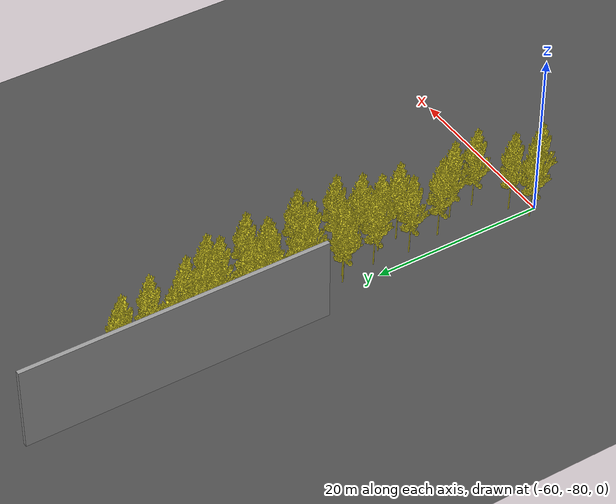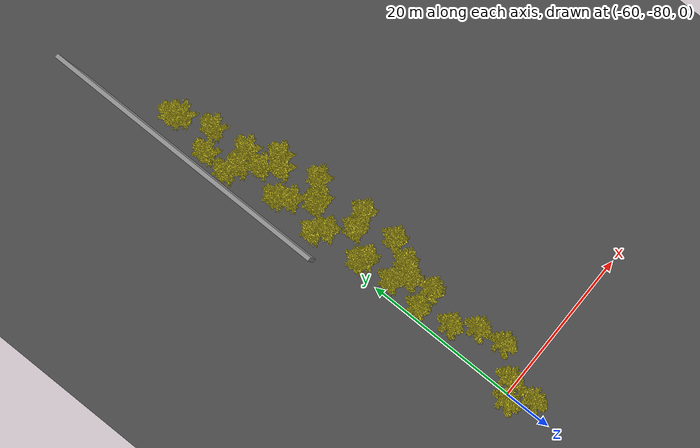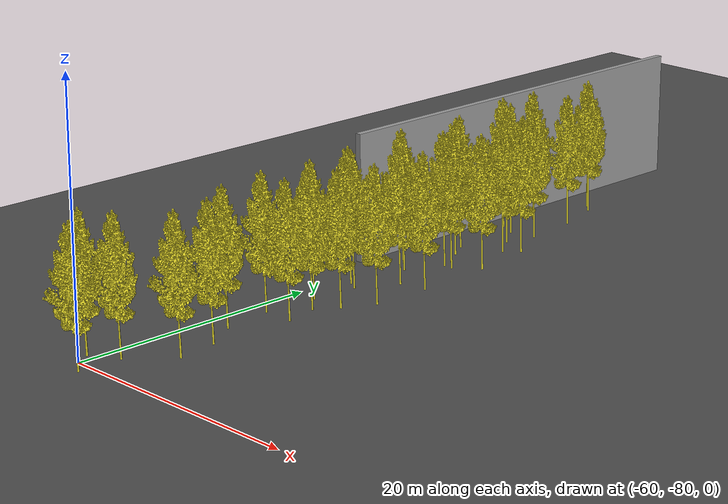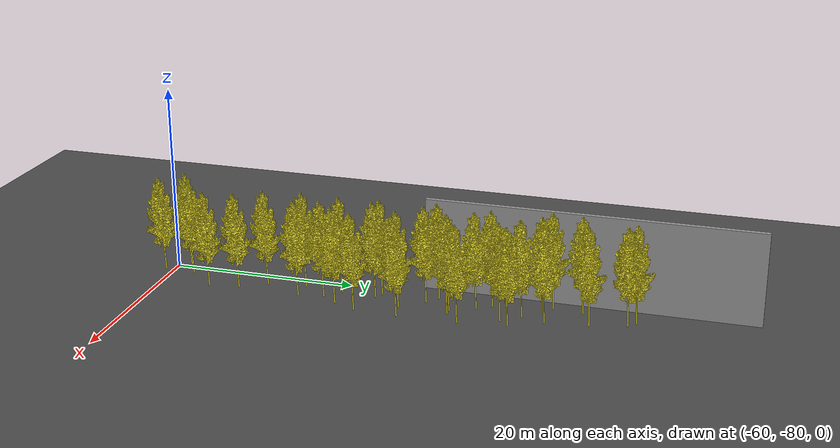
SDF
<sdf version="1.6">
 <world name="default">
  <model name="ground_plane">
   <static>1</static>
   <link name="link">
    <collision name="collision">
     <geometry><plane><normal>0 0 1</normal><size>40000 40000</size></plane></geometry>
     <surface>
      <contact><collide_bitmask>65535</collide_bitmask></contact>
      <friction><ode><mu>100</mu><mu2>50</mu2></ode></friction>
     </surface>
    </collision>
    <visual name="visual">
     <cast_shadows>0</cast_shadows>
     <geometry><plane><normal>0 0 1</normal><size>130 180</size></plane></geometry>
     <material>
      <script><uri>file://media/materials/scripts/gazebo.material</uri><name>Gazebo/Road</name></script>
     </material>
    </visual>
   </link>
  </model>
  <model name="wall1_clone_clone_0_clone_1">
   <link name="link">
    <enable_wind>1</enable_wind>
    <inertial>
     <mass>1</mass>
     <inertia><ixx>1</ixx><ixy>0</ixy><ixz>0</ixz><iyy>1</iyy><iyz>0</iyz><izz>1</izz></inertia>
    </inertial>
    <visual name="visual">
     <cast_shadows>0</cast_shadows>
     <geometry><box><size>35 0.5 10</size></box></geometry>
     <material>
      <script>
       <uri>model://grey_wall/materials/scripts</uri>
       <uri>model://grey_wall/materials/textures</uri>
       <name>vrc/grey_wall</name>
      </script>
      <shader type="pixel"><normal_map>__default__</normal_map></shader>
      <ambient>1 1 1 1</ambient>
      <diffuse>1 1 1 1</diffuse>
      <specular>0 0 0 1</specular>
      <emissive>0 0 0 1</emissive>
     </material>
    </visual>
    <collision name="collision">
     <geometry><box><size>35 0.5 10</size></box></geometry>
     <surface>
      <friction>
       <ode><mu>1</mu><mu2>1</mu2><fdir1>0 0 0</fdir1><slip1>0</slip1><slip2>0</slip2></ode>
       <torsional>
        <coefficient>1</coefficient>
        <patch_radius>0</patch_radius>
        <surface_radius>0</surface_radius>
        <use_patch_radius>1</use_patch_radius>
        <ode><slip>0</slip></ode>
       </torsional>
      </friction>
      <bounce><restitution_coefficient>0</restitution_coefficient><threshold>1e+06</threshold></bounce>
      <contact>
       <collide_without_contact>0</collide_without_contact>
       <collide_without_contact_bitmask>1</collide_without_contact_bitmask>
       <collide_bitmask>1</collide_bitmask>
       <ode>
        <soft_cfm>0</soft_cfm>
        <soft_erp>0.2</soft_erp>
        <kp>1e+13</kp>
        <kd>1</kd>
        <max_vel>0.01</max_vel>
        <min_depth>0</min_depth>
       </ode>
       <bullet>
        <split_impulse>1</split_impulse>
        <split_impulse_penetration_threshold>-0.01</split_impulse_penetration_threshold>
        <soft_cfm>0</soft_cfm>
        <soft_erp>0.2</soft_erp>
        <kp>1e+13</kp>
        <kd>1</kd>
       </bullet>
      </contact>
     </surface>
    </collision>
   </link>
   <static>1</static>
   <pose>-62.0288 -34.8437 5 0 0 -1.57191</pose>
  </model>
  <model name="tree0_clone_clone_clone_5">
   <link name="tree_base">
    <inertial>
     <mass>50</mass>
     <inertia>
      <ixx>6.71748</ixx>
      <ixy>2.148e-05</ixy>
      <ixz>-2.4e-07</ixz>
      <iyy>6.71748</iyy>
      <iyz>-0.171807</iyz>
      <izz>6.71748</izz>
     </inertia>
    </inertial>
    <collision name="tree_base_fixed_joint_lump__collision_collision">
     <geometry>
      <mesh>
       <scale>0.4 0.4 0.6</scale>
       <uri>/home/ana/catkin_ws/src/frontier_exploration_3d/models/tree/meshes/tree_25k_mesh.dae</uri>
      </mesh>
     </geometry>
    </collision>
    <visual name="tree_base_visual">
     <geometry>
      <mesh>
       <scale>0.4 0.4 0.6</scale>
       <uri>/home/ana/catkin_ws/src/frontier_exploration_3d/models/tree/meshes/tree_25k_mesh.dae</uri>
      </mesh>
     </geometry>
     <material>
      <script><name>Gazebo/Yellow</name><uri>file://media/materials/scripts/gazebo.material</uri></script>
     </material>
    </visual>
   </link>
   <joint name="joint_tree_base" type="fixed"><child>tree_base</child><parent>world</parent></joint>
   <static>1</static>
   <pose>-59.4162 -46.4754 0 0 -0 0</pose>
  </model>
  <model name="tree0_clone_clone_clone_6">
   <link name="tree_base">
    <inertial>
     <mass>50</mass>
     <inertia>
      <ixx>6.71748</ixx>
      <ixy>2.148e-05</ixy>
      <ixz>-2.4e-07</ixz>
      <iyy>6.71748</iyy>
      <iyz>-0.171807</iyz>
      <izz>6.71748</izz>
     </inertia>
    </inertial>
    <collision name="tree_base_fixed_joint_lump__collision_collision">
     <geometry>
      <mesh>
       <scale>0.4 0.4 0.6</scale>
       <uri>/home/ana/catkin_ws/src/frontier_exploration_3d/models/tree/meshes/tree_25k_mesh.dae</uri>
      </mesh>
     </geometry>
    </collision>
    <visual name="tree_base_visual">
     <geometry>
      <mesh>
       <scale>0.4 0.4 0.6</scale>
       <uri>/home/ana/catkin_ws/src/frontier_exploration_3d/models/tree/meshes/tree_25k_mesh.dae</uri>
      </mesh>
     </geometry>
     <material>
      <script><name>Gazebo/Yellow</name><uri>file://media/materials/scripts/gazebo.material</uri></script>
     </material>
    </visual>
   </link>
   <joint name="joint_tree_base" type="fixed"><child>tree_base</child><parent>world</parent></joint>
   <static>1</static>
   <pose>-59.0154 -40.7074 0 0 -0 0</pose>
  </model>
  <model name="tree0_clone_clone_clone_7">
   <link name="tree_base">
    <inertial>
     <mass>50</mass>
     <inertia>
      <ixx>6.71748</ixx>
      <ixy>2.148e-05</ixy>
      <ixz>-2.4e-07</ixz>
      <iyy>6.71748</iyy>
      <iyz>-0.171807</iyz>
      <izz>6.71748</izz>
     </inertia>
    </inertial>
    <collision name="tree_base_fixed_joint_lump__collision_collision">
     <geometry>
      <mesh>
       <scale>0.4 0.4 0.6</scale>
       <uri>/home/ana/catkin_ws/src/frontier_exploration_3d/models/tree/meshes/tree_25k_mesh.dae</uri>
      </mesh>
     </geometry>
    </collision>
    <visual name="tree_base_visual">
     <geometry>
      <mesh>
       <scale>0.4 0.4 0.6</scale>
       <uri>/home/ana/catkin_ws/src/frontier_exploration_3d/models/tree/meshes/tree_25k_mesh.dae</uri>
      </mesh>
     </geometry>
     <material>
      <script><name>Gazebo/Yellow</name><uri>file://media/materials/scripts/gazebo.material</uri></script>
     </material>
    </visual>
   </link>
   <joint name="joint_tree_base" type="fixed"><child>tree_base</child><parent>world</parent></joint>
   <static>1</static>
   <pose>-58.7263 -35.3485 0 0 -0 0</pose>
  </model>
  <model name="tree0_clone_clone_clone_8">
   <link name="tree_base">
    <inertial>
     <mass>50</mass>
     <inertia>
      <ixx>6.71748</ixx>
      <ixy>2.148e-05</ixy>
      <ixz>-2.4e-07</ixz>
      <iyy>6.71748</iyy>
      <iyz>-0.171807</iyz>
      <izz>6.71748</izz>
     </inertia>
    </inertial>
    <collision name="tree_base_fixed_joint_lump__collision_collision">
     <geometry>
      <mesh>
       <scale>0.4 0.4 0.6</scale>
       <uri>/home/ana/catkin_ws/src/frontier_exploration_3d/models/tree/meshes/tree_25k_mesh.dae</uri>
      </mesh>
     </geometry>
    </collision>
    <visual name="tree_base_visual">
     <geometry>
      <mesh>
       <scale>0.4 0.4 0.6</scale>
       <uri>/home/ana/catkin_ws/src/frontier_exploration_3d/models/tree/meshes/tree_25k_mesh.dae</uri>
      </mesh>
     </geometry>
     <material>
      <script><name>Gazebo/Yellow</name><uri>file://media/materials/scripts/gazebo.material</uri></script>
     </material>
    </visual>
   </link>
   <joint name="joint_tree_base" type="fixed"><child>tree_base</child><parent>world</parent></joint>
   <static>1</static>
   <pose>-56.7958 -44.7371 0 0 -0 0</pose>
  </model>
  <model name="tree0_clone_clone_clone_9">
   <link name="tree_base">
    <inertial>
     <mass>50</mass>
     <inertia>
      <ixx>6.71748</ixx>
      <ixy>2.148e-05</ixy>
      <ixz>-2.4e-07</ixz>
      <iyy>6.71748</iyy>
      <iyz>-0.171807</iyz>
      <izz>6.71748</izz>
     </inertia>
    </inertial>
    <collision name="tree_base_fixed_joint_lump__collision_collision">
     <geometry>
      <mesh>
       <scale>0.4 0.4 0.6</scale>
       <uri>/home/ana/catkin_ws/src/frontier_exploration_3d/models/tree/meshes/tree_25k_mesh.dae</uri>
      </mesh>
     </geometry>
    </collision>
    <visual name="tree_base_visual">
     <geometry>
      <mesh>
       <scale>0.4 0.4 0.6</scale>
       <uri>/home/ana/catkin_ws/src/frontier_exploration_3d/models/tree/meshes/tree_25k_mesh.dae</uri>
      </mesh>
     </geometry>
     <material>
      <script><name>Gazebo/Yellow</name><uri>file://media/materials/scripts/gazebo.material</uri></script>
     </material>
    </visual>
   </link>
   <joint name="joint_tree_base" type="fixed"><child>tree_base</child><parent>world</parent></joint>
   <static>1</static>
   <pose>-58.7918 -52.4923 0 0 -0 0</pose>
  </model>
  <model name="tree0_clone_clone_clone_10">
   <link name="tree_base">
    <inertial>
     <mass>50</mass>
     <inertia>
      <ixx>6.71748</ixx>
      <ixy>2.148e-05</ixy>
      <ixz>-2.4e-07</ixz>
      <iyy>6.71748</iyy>
      <iyz>-0.171807</iyz>
      <izz>6.71748</izz>
     </inertia>
    </inertial>
    <collision name="tree_base_fixed_joint_lump__collision_collision">
     <geometry>
      <mesh>
       <scale>0.4 0.4 0.6</scale>
       <uri>/home/ana/catkin_ws/src/frontier_exploration_3d/models/tree/meshes/tree_25k_mesh.dae</uri>
      </mesh>
     </geometry>
    </collision>
    <visual name="tree_base_visual">
     <geometry>
      <mesh>
       <scale>0.4 0.4 0.6</scale>
       <uri>/home/ana/catkin_ws/src/frontier_exploration_3d/models/tree/meshes/tree_25k_mesh.dae</uri>
      </mesh>
     </geometry>
     <material>
      <script><name>Gazebo/Yellow</name><uri>file://media/materials/scripts/gazebo.material</uri></script>
     </material>
    </visual>
   </link>
   <joint name="joint_tree_base" type="fixed"><child>tree_base</child><parent>world</parent></joint>
   <static>1</static>
   <pose>-56.2185 -49.9586 0 0 -0 0</pose>
  </model>
  <model name="tree0_clone_clone_clone_11">
   <link name="tree_base">
    <inertial>
     <mass>50</mass>
     <inertia>
      <ixx>6.71748</ixx>
      <ixy>2.148e-05</ixy>
      <ixz>-2.4e-07</ixz>
      <iyy>6.71748</iyy>
      <iyz>-0.171807</iyz>
      <izz>6.71748</izz>
     </inertia>
    </inertial>
    <collision name="tree_base_fixed_joint_lump__collision_collision">
     <geometry>
      <mesh>
       <scale>0.4 0.4 0.6</scale>
       <uri>/home/ana/catkin_ws/src/frontier_exploration_3d/models/tree/meshes/tree_25k_mesh.dae</uri>
      </mesh>
     </geometry>
    </collision>
    <visual name="tree_base_visual">
     <geometry>
      <mesh>
       <scale>0.4 0.4 0.6</scale>
       <uri>/home/ana/catkin_ws/src/frontier_exploration_3d/models/tree/meshes/tree_25k_mesh.dae</uri>
      </mesh>
     </geometry>
     <material>
      <script><name>Gazebo/Yellow</name><uri>file://media/materials/scripts/gazebo.material</uri></script>
     </material>
    </visual>
   </link>
   <joint name="joint_tree_base" type="fixed"><child>tree_base</child><parent>world</parent></joint>
   <static>1</static>
   <pose>-54.3122 -43.2584 0 0 -0 0</pose>
  </model>
  <model name="tree0_clone_clone_clone_12">
   <link name="tree_base">
    <inertial>
     <mass>50</mass>
     <inertia>
      <ixx>6.71748</ixx>
      <ixy>2.148e-05</ixy>
      <ixz>-2.4e-07</ixz>
      <iyy>6.71748</iyy>
      <iyz>-0.171807</iyz>
      <izz>6.71748</izz>
     </inertia>
    </inertial>
    <collision name="tree_base_fixed_joint_lump__collision_collision">
     <geometry>
      <mesh>
       <scale>0.4 0.4 0.6</scale>
       <uri>/home/ana/catkin_ws/src/frontier_exploration_3d/models/tree/meshes/tree_25k_mesh.dae</uri>
      </mesh>
     </geometry>
    </collision>
    <visual name="tree_base_visual">
     <geometry>
      <mesh>
       <scale>0.4 0.4 0.6</scale>
       <uri>/home/ana/catkin_ws/src/frontier_exploration_3d/models/tree/meshes/tree_25k_mesh.dae</uri>
      </mesh>
     </geometry>
     <material>
      <script><name>Gazebo/Yellow</name><uri>file://media/materials/scripts/gazebo.material</uri></script>
     </material>
    </visual>
   </link>
   <joint name="joint_tree_base" type="fixed"><child>tree_base</child><parent>world</parent></joint>
   <static>1</static>
   <pose>-56.7407 -34.841 0 0 -0 0</pose>
  </model>
  <model name="tree0_clone_clone_clone_13">
   <link name="tree_base">
    <inertial>
     <mass>50</mass>
     <inertia>
      <ixx>6.71748</ixx>
      <ixy>2.148e-05</ixy>
      <ixz>-2.4e-07</ixz>
      <iyy>6.71748</iyy>
      <iyz>-0.171807</iyz>
      <izz>6.71748</izz>
     </inertia>
    </inertial>
    <collision name="tree_base_fixed_joint_lump__collision_collision">
     <geometry>
      <mesh>
       <scale>0.4 0.4 0.6</scale>
       <uri>/home/ana/catkin_ws/src/frontier_exploration_3d/models/tree/meshes/tree_25k_mesh.dae</uri>
      </mesh>
     </geometry>
    </collision>
    <visual name="tree_base_visual">
     <geometry>
      <mesh>
       <scale>0.4 0.4 0.6</scale>
       <uri>/home/ana/catkin_ws/src/frontier_exploration_3d/models/tree/meshes/tree_25k_mesh.dae</uri>
      </mesh>
     </geometry>
     <material>
      <script><name>Gazebo/Yellow</name><uri>file://media/materials/scripts/gazebo.material</uri></script>
     </material>
    </visual>
   </link>
   <joint name="joint_tree_base" type="fixed"><child>tree_base</child><parent>world</parent></joint>
   <static>1</static>
   <pose>-55.0153 -38.2093 0 0 -0 0</pose>
  </model>
  <model name="tree0_clone_clone_clone_15">
   <link name="tree_base">
    <inertial>
     <mass>50</mass>
     <inertia>
      <ixx>6.71748</ixx>
      <ixy>2.148e-05</ixy>
      <ixz>-2.4e-07</ixz>
      <iyy>6.71748</iyy>
      <iyz>-0.171807</iyz>
      <izz>6.71748</izz>
     </inertia>
    </inertial>
    <collision name="tree_base_fixed_joint_lump__collision_collision">
     <geometry>
      <mesh>
       <scale>0.4 0.4 0.6</scale>
       <uri>/home/ana/catkin_ws/src/frontier_exploration_3d/models/tree/meshes/tree_25k_mesh.dae</uri>
      </mesh>
     </geometry>
    </collision>
    <visual name="tree_base_visual">
     <geometry>
      <mesh>
       <scale>0.4 0.4 0.6</scale>
       <uri>/home/ana/catkin_ws/src/frontier_exploration_3d/models/tree/meshes/tree_25k_mesh.dae</uri>
      </mesh>
     </geometry>
     <material>
      <script><name>Gazebo/Yellow</name><uri>file://media/materials/scripts/gazebo.material</uri></script>
     </material>
    </visual>
   </link>
   <joint name="joint_tree_base" type="fixed"><child>tree_base</child><parent>world</parent></joint>
   <static>1</static>
   <pose>-59.9026 -31.4439 0 0 -0 0</pose>
  </model>
  <model name="tree0_clone_clone_clone_17">
   <link name="tree_base">
    <inertial>
     <mass>50</mass>
     <inertia>
      <ixx>6.71748</ixx>
      <ixy>2.148e-05</ixy>
      <ixz>-2.4e-07</ixz>
      <iyy>6.71748</iyy>
      <iyz>-0.171807</iyz>
      <izz>6.71748</izz>
     </inertia>
    </inertial>
    <collision name="tree_base_fixed_joint_lump__collision_collision">
     <geometry>
      <mesh>
       <scale>0.4 0.4 0.6</scale>
       <uri>/home/ana/catkin_ws/src/frontier_exploration_3d/models/tree/meshes/tree_25k_mesh.dae</uri>
      </mesh>
     </geometry>
    </collision>
    <visual name="tree_base_visual">
     <geometry>
      <mesh>
       <scale>0.4 0.4 0.6</scale>
       <uri>/home/ana/catkin_ws/src/frontier_exploration_3d/models/tree/meshes/tree_25k_mesh.dae</uri>
      </mesh>
     </geometry>
     <material>
      <script><name>Gazebo/Yellow</name><uri>file://media/materials/scripts/gazebo.material</uri></script>
     </material>
    </visual>
   </link>
   <joint name="joint_tree_base" type="fixed"><child>tree_base</child><parent>world</parent></joint>
   <static>1</static>
   <pose>-58.1961 -56.69 0 0 -0 0</pose>
  </model>
  <model name="tree0_clone_clone_clone_18">
   <link name="tree_base">
    <inertial>
     <mass>50</mass>
     <inertia>
      <ixx>6.71748</ixx>
      <ixy>2.148e-05</ixy>
      <ixz>-2.4e-07</ixz>
      <iyy>6.71748</iyy>
      <iyz>-0.171807</iyz>
      <izz>6.71748</izz>
     </inertia>
    </inertial>
    <collision name="tree_base_fixed_joint_lump__collision_collision">
     <geometry>
      <mesh>
       <scale>0.4 0.4 0.6</scale>
       <uri>/home/ana/catkin_ws/src/frontier_exploration_3d/models/tree/meshes/tree_25k_mesh.dae</uri>
      </mesh>
     </geometry>
    </collision>
    <visual name="tree_base_visual">
     <geometry>
      <mesh>
       <scale>0.4 0.4 0.6</scale>
       <uri>/home/ana/catkin_ws/src/frontier_exploration_3d/models/tree/meshes/tree_25k_mesh.dae</uri>
      </mesh>
     </geometry>
     <material>
      <script><name>Gazebo/Yellow</name><uri>file://media/materials/scripts/gazebo.material</uri></script>
     </material>
    </visual>
   </link>
   <joint name="joint_tree_base" type="fixed"><child>tree_base</child><parent>world</parent></joint>
   <static>1</static>
   <pose>-55.4688 -56.6225 0 0 -0 0</pose>
  </model>
  <model name="tree0_clone_clone_clone_19">
   <link name="tree_base">
    <inertial>
     <mass>50</mass>
     <inertia>
      <ixx>6.71748</ixx>
      <ixy>2.148e-05</ixy>
      <ixz>-2.4e-07</ixz>
      <iyy>6.71748</iyy>
      <iyz>-0.171807</iyz>
      <izz>6.71748</izz>
     </inertia>
    </inertial>
    <collision name="tree_base_fixed_joint_lump__collision_collision">
     <geometry>
      <mesh>
       <scale>0.4 0.4 0.6</scale>
       <uri>/home/ana/catkin_ws/src/frontier_exploration_3d/models/tree/meshes/tree_25k_mesh.dae</uri>
      </mesh>
     </geometry>
    </collision>
    <visual name="tree_base_visual">
     <geometry>
      <mesh>
       <scale>0.4 0.4 0.6</scale>
       <uri>/home/ana/catkin_ws/src/frontier_exploration_3d/models/tree/meshes/tree_25k_mesh.dae</uri>
      </mesh>
     </geometry>
     <material>
      <script><name>Gazebo/Yellow</name><uri>file://media/materials/scripts/gazebo.material</uri></script>
     </material>
    </visual>
   </link>
   <joint name="joint_tree_base" type="fixed"><child>tree_base</child><parent>world</parent></joint>
   <static>1</static>
   <pose>-58.5875 -60.921 0 0 -0 0</pose>
  </model>
  <model name="tree0_clone_clone_clone_21">
   <link name="tree_base">
    <inertial>
     <mass>50</mass>
     <inertia>
      <ixx>6.71748</ixx>
      <ixy>2.148e-05</ixy>
      <ixz>-2.4e-07</ixz>
      <iyy>6.71748</iyy>
      <iyz>-0.171807</iyz>
      <izz>6.71748</izz>
     </inertia>
    </inertial>
    <collision name="tree_base_fixed_joint_lump__collision_collision">
     <geometry>
      <mesh>
       <scale>0.4 0.4 0.6</scale>
       <uri>/home/ana/catkin_ws/src/frontier_exploration_3d/models/tree/meshes/tree_25k_mesh.dae</uri>
      </mesh>
     </geometry>
    </collision>
    <visual name="tree_base_visual">
     <geometry>
      <mesh>
       <scale>0.4 0.4 0.6</scale>
       <uri>/home/ana/catkin_ws/src/frontier_exploration_3d/models/tree/meshes/tree_25k_mesh.dae</uri>
      </mesh>
     </geometry>
     <material>
      <script><name>Gazebo/Yellow</name><uri>file://media/materials/scripts/gazebo.material</uri></script>
     </material>
    </visual>
   </link>
   <joint name="joint_tree_base" type="fixed"><child>tree_base</child><parent>world</parent></joint>
   <static>1</static>
   <pose>-59.057 -25.8813 0 0 -0 0</pose>
  </model>
  <model name="tree0_clone_clone_clone_22">
   <link name="tree_base">
    <inertial>
     <mass>50</mass>
     <inertia>
      <ixx>6.71748</ixx>
      <ixy>2.148e-05</ixy>
      <ixz>-2.4e-07</ixz>
      <iyy>6.71748</iyy>
      <iyz>-0.171807</iyz>
      <izz>6.71748</izz>
     </inertia>
    </inertial>
    <collision name="tree_base_fixed_joint_lump__collision_collision">
     <geometry>
      <mesh>
       <scale>0.4 0.4 0.6</scale>
       <uri>/home/ana/catkin_ws/src/frontier_exploration_3d/models/tree/meshes/tree_25k_mesh.dae</uri>
      </mesh>
     </geometry>
    </collision>
    <visual name="tree_base_visual">
     <geometry>
      <mesh>
       <scale>0.4 0.4 0.6</scale>
       <uri>/home/ana/catkin_ws/src/frontier_exploration_3d/models/tree/meshes/tree_25k_mesh.dae</uri>
      </mesh>
     </geometry>
     <material>
      <script><name>Gazebo/Yellow</name><uri>file://media/materials/scripts/gazebo.material</uri></script>
     </material>
    </visual>
   </link>
   <joint name="joint_tree_base" type="fixed"><child>tree_base</child><parent>world</parent></joint>
   <static>1</static>
   <pose>-58.3049 -26.6491 0 0 -0 0</pose>
  </model>
  <model name="tree0_clone_clone_clone_24">
   <link name="tree_base">
    <inertial>
     <mass>50</mass>
     <inertia>
      <ixx>6.71748</ixx>
      <ixy>2.148e-05</ixy>
      <ixz>-2.4e-07</ixz>
      <iyy>6.71748</iyy>
      <iyz>-0.171807</iyz>
      <izz>6.71748</izz>
     </inertia>
    </inertial>
    <collision name="tree_base_fixed_joint_lump__collision_collision">
     <geometry>
      <mesh>
       <scale>0.4 0.4 0.6</scale>
       <uri>/home/ana/catkin_ws/src/frontier_exploration_3d/models/tree/meshes/tree_25k_mesh.dae</uri>
      </mesh>
     </geometry>
    </collision>
    <visual name="tree_base_visual">
     <geometry>
      <mesh>
       <scale>0.4 0.4 0.6</scale>
       <uri>/home/ana/catkin_ws/src/frontier_exploration_3d/models/tree/meshes/tree_25k_mesh.dae</uri>
      </mesh>
     </geometry>
     <material>
      <script><name>Gazebo/Yellow</name><uri>file://media/materials/scripts/gazebo.material</uri></script>
     </material>
    </visual>
   </link>
   <joint name="joint_tree_base" type="fixed"><child>tree_base</child><parent>world</parent></joint>
   <static>1</static>
   <pose>-55.9076 -70.8863 0 0 -0 0</pose>
  </model>
  <model name="tree0_clone_clone_clone_25">
   <link name="tree_base">
    <inertial>
     <mass>50</mass>
     <inertia>
      <ixx>6.71748</ixx>
      <ixy>2.148e-05</ixy>
      <ixz>-2.4e-07</ixz>
      <iyy>6.71748</iyy>
      <iyz>-0.171807</iyz>
      <izz>6.71748</izz>
     </inertia>
    </inertial>
    <collision name="tree_base_fixed_joint_lump__collision_collision">
     <geometry>
      <mesh>
       <scale>0.4 0.4 0.6</scale>
       <uri>/home/ana/catkin_ws/src/frontier_exploration_3d/models/tree/meshes/tree_25k_mesh.dae</uri>
      </mesh>
     </geometry>
    </collision>
    <visual name="tree_base_visual">
     <geometry>
      <mesh>
       <scale>0.4 0.4 0.6</scale>
       <uri>/home/ana/catkin_ws/src/frontier_exploration_3d/models/tree/meshes/tree_25k_mesh.dae</uri>
      </mesh>
     </geometry>
     <material>
      <script><name>Gazebo/Yellow</name><uri>file://media/materials/scripts/gazebo.material</uri></script>
     </material>
    </visual>
   </link>
   <joint name="joint_tree_base" type="fixed"><child>tree_base</child><parent>world</parent></joint>
   <static>1</static>
   <pose>-58.5299 -73.889 0 0 -0 0</pose>
  </model>
  <model name="tree0_clone_clone_clone_26">
   <link name="tree_base">
    <inertial>
     <mass>50</mass>
     <inertia>
      <ixx>6.71748</ixx>
      <ixy>2.148e-05</ixy>
      <ixz>-2.4e-07</ixz>
      <iyy>6.71748</iyy>
      <iyz>-0.171807</iyz>
      <izz>6.71748</izz>
     </inertia>
    </inertial>
    <collision name="tree_base_fixed_joint_lump__collision_collision">
     <geometry>
      <mesh>
       <scale>0.4 0.4 0.6</scale>
       <uri>/home/ana/catkin_ws/src/frontier_exploration_3d/models/tree/meshes/tree_25k_mesh.dae</uri>
      </mesh>
     </geometry>
    </collision>
    <visual name="tree_base_visual">
     <geometry>
      <mesh>
       <scale>0.4 0.4 0.6</scale>
       <uri>/home/ana/catkin_ws/src/frontier_exploration_3d/models/tree/meshes/tree_25k_mesh.dae</uri>
      </mesh>
     </geometry>
     <material>
      <script><name>Gazebo/Yellow</name><uri>file://media/materials/scripts/gazebo.material</uri></script>
     </material>
    </visual>
   </link>
   <joint name="joint_tree_base" type="fixed"><child>tree_base</child><parent>world</parent></joint>
   <static>1</static>
   <pose>-58.7314 -77.2862 0 0 -0 0</pose>
  </model>
  <model name="tree0_clone_clone_clone_23_clone_1">
   <link name="tree_base">
    <inertial>
     <mass>50</mass>
     <inertia>
      <ixx>6.71748</ixx>
      <ixy>2.148e-05</ixy>
      <ixz>-2.4e-07</ixz>
      <iyy>6.71748</iyy>
      <iyz>-0.171807</iyz>
      <izz>6.71748</izz>
     </inertia>
    </inertial>
    <collision name="tree_base_fixed_joint_lump__collision_collision">
     <geometry>
      <mesh>
       <scale>0.4 0.4 0.6</scale>
       <uri>/home/ana/catkin_ws/src/frontier_exploration_3d/models/tree/meshes/tree_25k_mesh.dae</uri>
      </mesh>
     </geometry>
    </collision>
    <visual name="tree_base_visual">
     <geometry>
      <mesh>
       <scale>0.4 0.4 0.6</scale>
       <uri>/home/ana/catkin_ws/src/frontier_exploration_3d/models/tree/meshes/tree_25k_mesh.dae</uri>
      </mesh>
     </geometry>
     <material>
      <script><name>Gazebo/Yellow</name><uri>file://media/materials/scripts/gazebo.material</uri></script>
     </material>
    </visual>
   </link>
   <joint name="joint_tree_base" type="fixed"><child>tree_base</child><parent>world</parent></joint>
   <static>1</static>
   <pose>-56.3429 -67.676 0 0 -0 0</pose>
  </model>
  <model name="tree0_clone_clone_clone_23_clone_4">
   <link name="tree_base">
    <inertial>
     <mass>50</mass>
     <inertia>
      <ixx>6.71748</ixx>
      <ixy>2.148e-05</ixy>
      <ixz>-2.4e-07</ixz>
      <iyy>6.71748</iyy>
      <iyz>-0.171807</iyz>
      <izz>6.71748</izz>
     </inertia>
    </inertial>
    <collision name="tree_base_fixed_joint_lump__collision_collision">
     <geometry>
      <mesh>
       <scale>0.4 0.4 0.6</scale>
       <uri>/home/ana/catkin_ws/src/frontier_exploration_3d/models/tree/meshes/tree_25k_mesh.dae</uri>
      </mesh>
     </geometry>
    </collision>
    <visual name="tree_base_visual">
     <geometry>
      <mesh>
       <scale>0.4 0.4 0.6</scale>
       <uri>/home/ana/catkin_ws/src/frontier_exploration_3d/models/tree/meshes/tree_25k_mesh.dae</uri>
      </mesh>
     </geometry>
     <material>
      <script><name>Gazebo/Yellow</name><uri>file://media/materials/scripts/gazebo.material</uri></script>
     </material>
    </visual>
   </link>
   <joint name="joint_tree_base" type="fixed"><child>tree_base</child><parent>world</parent></joint>
   <static>1</static>
   <pose>-57.2302 -30.3763 0 0 -0 0</pose>
  </model>
  <model name="tree0_clone_clone_clone_23_clone_5">
   <link name="tree_base">
    <inertial>
     <mass>50</mass>
     <inertia>
      <ixx>6.71748</ixx>
      <ixy>2.148e-05</ixy>
      <ixz>-2.4e-07</ixz>
      <iyy>6.71748</iyy>
      <iyz>-0.171807</iyz>
      <izz>6.71748</izz>
     </inertia>
    </inertial>
    <collision name="tree_base_fixed_joint_lump__collision_collision">
     <geometry>
      <mesh>
       <scale>0.4 0.4 0.6</scale>
       <uri>/home/ana/catkin_ws/src/frontier_exploration_3d/models/tree/meshes/tree_25k_mesh.dae</uri>
      </mesh>
     </geometry>
    </collision>
    <visual name="tree_base_visual">
     <geometry>
      <mesh>
       <scale>0.4 0.4 0.6</scale>
       <uri>/home/ana/catkin_ws/src/frontier_exploration_3d/models/tree/meshes/tree_25k_mesh.dae</uri>
      </mesh>
     </geometry>
     <material>
      <script><name>Gazebo/Yellow</name><uri>file://media/materials/scripts/gazebo.material</uri></script>
     </material>
    </visual>
   </link>
   <joint name="joint_tree_base" type="fixed"><child>tree_base</child><parent>world</parent></joint>
   <static>1</static>
   <pose>-56.682 -58.2556 0 0 -0 0</pose>
  </model>
  <model name="tree0_clone_clone_clone_23_clone_6">
   <link name="tree_base">
    <inertial>
     <mass>50</mass>
     <inertia>
      <ixx>6.71748</ixx>
      <ixy>2.148e-05</ixy>
      <ixz>-2.4e-07</ixz>
      <iyy>6.71748</iyy>
      <iyz>-0.171807</iyz>
      <izz>6.71748</izz>
     </inertia>
    </inertial>
    <collision name="tree_base_fixed_joint_lump__collision_collision">
     <geometry>
      <mesh>
       <scale>0.4 0.4 0.6</scale>
       <uri>/home/ana/catkin_ws/src/frontier_exploration_3d/models/tree/meshes/tree_25k_mesh.dae</uri>
      </mesh>
     </geometry>
    </collision>
    <visual name="tree_base_visual">
     <geometry>
      <mesh>
       <scale>0.4 0.4 0.6</scale>
       <uri>/home/ana/catkin_ws/src/frontier_exploration_3d/models/tree/meshes/tree_25k_mesh.dae</uri>
      </mesh>
     </geometry>
     <material>
      <script><name>Gazebo/Yellow</name><uri>file://media/materials/scripts/gazebo.material</uri></script>
     </material>
    </visual>
   </link>
   <joint name="joint_tree_base" type="fixed"><child>tree_base</child><parent>world</parent></joint>
   <static>1</static>
   <pose>-54.3047 -54.1694 0 0 -0 0</pose>
  </model>
  <model name="tree0_clone_clone_clone_23_clone_7">
   <link name="tree_base">
    <inertial>
     <mass>50</mass>
     <inertia>
      <ixx>6.71748</ixx>
      <ixy>2.148e-05</ixy>
      <ixz>-2.4e-07</ixz>
      <iyy>6.71748</iyy>
      <iyz>-0.171807</iyz>
      <izz>6.71748</izz>
     </inertia>
    </inertial>
    <collision name="tree_base_fixed_joint_lump__collision_collision">
     <geometry>
      <mesh>
       <scale>0.4 0.4 0.6</scale>
       <uri>/home/ana/catkin_ws/src/frontier_exploration_3d/models/tree/meshes/tree_25k_mesh.dae</uri>
      </mesh>
     </geometry>
    </collision>
    <visual name="tree_base_visual">
     <geometry>
      <mesh>
       <scale>0.4 0.4 0.6</scale>
       <uri>/home/ana/catkin_ws/src/frontier_exploration_3d/models/tree/meshes/tree_25k_mesh.dae</uri>
      </mesh>
     </geometry>
     <material>
      <script><name>Gazebo/Yellow</name><uri>file://media/materials/scripts/gazebo.material</uri></script>
     </material>
    </visual>
   </link>
   <joint name="joint_tree_base" type="fixed"><child>tree_base</child><parent>world</parent></joint>
   <static>1</static>
   <pose>-54.0947 -49.5453 0 0 -0 0</pose>
  </model>
  <model name="tree0_clone_clone_clone_23_clone_8">
   <link name="tree_base">
    <inertial>
     <mass>50</mass>
     <inertia>
      <ixx>6.71748</ixx>
      <ixy>2.148e-05</ixy>
      <ixz>-2.4e-07</ixz>
      <iyy>6.71748</iyy>
      <iyz>-0.171807</iyz>
      <izz>6.71748</izz>
     </inertia>
    </inertial>
    <collision name="tree_base_fixed_joint_lump__collision_collision">
     <geometry>
      <mesh>
       <scale>0.4 0.4 0.6</scale>
       <uri>/home/ana/catkin_ws/src/frontier_exploration_3d/models/tree/meshes/tree_25k_mesh.dae</uri>
      </mesh>
     </geometry>
    </collision>
    <visual name="tree_base_visual">
     <geometry>
      <mesh>
       <scale>0.4 0.4 0.6</scale>
       <uri>/home/ana/catkin_ws/src/frontier_exploration_3d/models/tree/meshes/tree_25k_mesh.dae</uri>
      </mesh>
     </geometry>
     <material>
      <script><name>Gazebo/Yellow</name><uri>file://media/materials/scripts/gazebo.material</uri></script>
     </material>
    </visual>
   </link>
   <joint name="joint_tree_base" type="fixed"><child>tree_base</child><parent>world</parent></joint>
   <static>1</static>
   <pose>-56.0681 -44.7383 0 0 -0 0</pose>
  </model>
  <model name="tree0_clone_clone_clone_23_clone_9">
   <link name="tree_base">
    <inertial>
     <mass>50</mass>
     <inertia>
      <ixx>6.71748</ixx>
      <ixy>2.148e-05</ixy>
      <ixz>-2.4e-07</ixz>
      <iyy>6.71748</iyy>
      <iyz>-0.171807</iyz>
      <izz>6.71748</izz>
     </inertia>
    </inertial>
    <collision name="tree_base_fixed_joint_lump__collision_collision">
     <geometry>
      <mesh>
       <scale>0.4 0.4 0.6</scale>
       <uri>/home/ana/catkin_ws/src/frontier_exploration_3d/models/tree/meshes/tree_25k_mesh.dae</uri>
      </mesh>
     </geometry>
    </collision>
    <visual name="tree_base_visual">
     <geometry>
      <mesh>
       <scale>0.4 0.4 0.6</scale>
       <uri>/home/ana/catkin_ws/src/frontier_exploration_3d/models/tree/meshes/tree_25k_mesh.dae</uri>
      </mesh>
     </geometry>
     <material>
      <script><name>Gazebo/Yellow</name><uri>file://media/materials/scripts/gazebo.material</uri></script>
     </material>
    </visual>
   </link>
   <joint name="joint_tree_base" type="fixed"><child>tree_base</child><parent>world</parent></joint>
   <static>1</static>
   <pose>-55.9902 -39.205 0 0 -0 0</pose>
  </model>
  <model name="tree0_clone_clone_clone_23_clone_10">
   <link name="tree_base">
    <inertial>
     <mass>50</mass>
     <inertia>
      <ixx>6.71748</ixx>
      <ixy>2.148e-05</ixy>
      <ixz>-2.4e-07</ixz>
      <iyy>6.71748</iyy>
      <iyz>-0.171807</iyz>
      <izz>6.71748</izz>
     </inertia>
    </inertial>
    <collision name="tree_base_fixed_joint_lump__collision_collision">
     <geometry>
      <mesh>
       <scale>0.4 0.4 0.6</scale>
       <uri>/home/ana/catkin_ws/src/frontier_exploration_3d/models/tree/meshes/tree_25k_mesh.dae</uri>
      </mesh>
     </geometry>
    </collision>
    <visual name="tree_base_visual">
     <geometry>
      <mesh>
       <scale>0.4 0.4 0.6</scale>
       <uri>/home/ana/catkin_ws/src/frontier_exploration_3d/models/tree/meshes/tree_25k_mesh.dae</uri>
      </mesh>
     </geometry>
     <material>
      <script><name>Gazebo/Yellow</name><uri>file://media/materials/scripts/gazebo.material</uri></script>
     </material>
    </visual>
   </link>
   <joint name="joint_tree_base" type="fixed"><child>tree_base</child><parent>world</parent></joint>
   <static>1</static>
   <pose>-57.3622 -37.2768 0 0 -0 0</pose>
  </model>
  <model name="tree0_clone_clone_clone_23_clone_11">
   <link name="tree_base">
    <inertial>
     <mass>50</mass>
     <inertia>
      <ixx>6.71748</ixx>
      <ixy>2.148e-05</ixy>
      <ixz>-2.4e-07</ixz>
      <iyy>6.71748</iyy>
      <iyz>-0.171807</iyz>
      <izz>6.71748</izz>
     </inertia>
    </inertial>
    <collision name="tree_base_fixed_joint_lump__collision_collision">
     <geometry>
      <mesh>
       <scale>0.4 0.4 0.6</scale>
       <uri>/home/ana/catkin_ws/src/frontier_exploration_3d/models/tree/meshes/tree_25k_mesh.dae</uri>
      </mesh>
     </geometry>
    </collision>
    <visual name="tree_base_visual">
     <geometry>
      <mesh>
       <scale>0.4 0.4 0.6</scale>
       <uri>/home/ana/catkin_ws/src/frontier_exploration_3d/models/tree/meshes/tree_25k_mesh.dae</uri>
      </mesh>
     </geometry>
     <material>
      <script><name>Gazebo/Yellow</name><uri>file://media/materials/scripts/gazebo.material</uri></script>
     </material>
    </visual>
   </link>
   <joint name="joint_tree_base" type="fixed"><child>tree_base</child><parent>world</parent></joint>
   <static>1</static>
   <pose>-58.1097 -42.2111 0 0 -0 0</pose>
  </model>
  <model name="tree0_clone_clone_clone_23_clone_12">
   <link name="tree_base">
    <inertial>
     <mass>50</mass>
     <inertia>
      <ixx>6.71748</ixx>
      <ixy>2.148e-05</ixy>
      <ixz>-2.4e-07</ixz>
      <iyy>6.71748</iyy>
      <iyz>-0.171807</iyz>
      <izz>6.71748</izz>
     </inertia>
    </inertial>
    <collision name="tree_base_fixed_joint_lump__collision_collision">
     <geometry>
      <mesh>
       <scale>0.4 0.4 0.6</scale>
       <uri>/home/ana/catkin_ws/src/frontier_exploration_3d/models/tree/meshes/tree_25k_mesh.dae</uri>
      </mesh>
     </geometry>
    </collision>
    <visual name="tree_base_visual">
     <geometry>
      <mesh>
       <scale>0.4 0.4 0.6</scale>
       <uri>/home/ana/catkin_ws/src/frontier_exploration_3d/models/tree/meshes/tree_25k_mesh.dae</uri>
      </mesh>
     </geometry>
     <material>
      <script><name>Gazebo/Yellow</name><uri>file://media/materials/scripts/gazebo.material</uri></script>
     </material>
    </visual>
   </link>
   <joint name="joint_tree_base" type="fixed"><child>tree_base</child><parent>world</parent></joint>
   <static>1</static>
   <pose>-56.1273 -60.9164 0 0 -0 0</pose>
  </model>
  <model name="tree0_clone_clone_clone_23_clone_13">
   <link name="tree_base">
    <inertial>
     <mass>50</mass>
     <inertia>
      <ixx>6.71748</ixx>
      <ixy>2.148e-05</ixy>
      <ixz>-2.4e-07</ixz>
      <iyy>6.71748</iyy>
      <iyz>-0.171807</iyz>
      <izz>6.71748</izz>
     </inertia>
    </inertial>
    <collision name="tree_base_fixed_joint_lump__collision_collision">
     <geometry>
      <mesh>
       <scale>0.4 0.4 0.6</scale>
       <uri>/home/ana/catkin_ws/src/frontier_exploration_3d/models/tree/meshes/tree_25k_mesh.dae</uri>
      </mesh>
     </geometry>
    </collision>
    <visual name="tree_base_visual">
     <geometry>
      <mesh>
       <scale>0.4 0.4 0.6</scale>
       <uri>/home/ana/catkin_ws/src/frontier_exploration_3d/models/tree/meshes/tree_25k_mesh.dae</uri>
      </mesh>
     </geometry>
     <material>
      <script><name>Gazebo/Yellow</name><uri>file://media/materials/scripts/gazebo.material</uri></script>
     </material>
    </visual>
   </link>
   <joint name="joint_tree_base" type="fixed"><child>tree_base</child><parent>world</parent></joint>
   <static>1</static>
   <pose>-57.9697 -65.0104 0 0 -0 0</pose>
  </model>
  <model name="tree0_clone_clone_clone_23_clone_14">
   <link name="tree_base">
    <inertial>
     <mass>50</mass>
     <inertia>
      <ixx>6.71748</ixx>
      <ixy>2.148e-05</ixy>
      <ixz>-2.4e-07</ixz>
      <iyy>6.71748</iyy>
      <iyz>-0.171807</iyz>
      <izz>6.71748</izz>
     </inertia>
    </inertial>
    <collision name="tree_base_fixed_joint_lump__collision_collision">
     <geometry>
      <mesh>
       <scale>0.4 0.4 0.6</scale>
       <uri>/home/ana/catkin_ws/src/frontier_exploration_3d/models/tree/meshes/tree_25k_mesh.dae</uri>
      </mesh>
     </geometry>
    </collision>
    <visual name="tree_base_visual">
     <geometry>
      <mesh>
       <scale>0.4 0.4 0.6</scale>
       <uri>/home/ana/catkin_ws/src/frontier_exploration_3d/models/tree/meshes/tree_25k_mesh.dae</uri>
      </mesh>
     </geometry>
     <material>
      <script><name>Gazebo/Yellow</name><uri>file://media/materials/scripts/gazebo.material</uri></script>
     </material>
    </visual>
   </link>
   <joint name="joint_tree_base" type="fixed"><child>tree_base</child><parent>world</parent></joint>
   <static>1</static>
   <pose>-57.929 -52.9785 0 0 -0 0</pose>
  </model>
  <model name="tree0_clone_clone_clone_23_clone_15">
   <link name="tree_base">
    <inertial>
     <mass>50</mass>
     <inertia>
      <ixx>6.71748</ixx>
      <ixy>2.148e-05</ixy>
      <ixz>-2.4e-07</ixz>
      <iyy>6.71748</iyy>
      <iyz>-0.171807</iyz>
      <izz>6.71748</izz>
     </inertia>
    </inertial>
    <collision name="tree_base_fixed_joint_lump__collision_collision">
     <geometry>
      <mesh>
       <scale>0.4 0.4 0.6</scale>
       <uri>/home/ana/catkin_ws/src/frontier_exploration_3d/models/tree/meshes/tree_25k_mesh.dae</uri>
      </mesh>
     </geometry>
    </collision>
    <visual name="tree_base_visual">
     <geometry>
      <mesh>
       <scale>0.4 0.4 0.6</scale>
       <uri>/home/ana/catkin_ws/src/frontier_exploration_3d/models/tree/meshes/tree_25k_mesh.dae</uri>
      </mesh>
     </geometry>
     <material>
      <script><name>Gazebo/Yellow</name><uri>file://media/materials/scripts/gazebo.material</uri></script>
     </material>
    </visual>
   </link>
   <joint name="joint_tree_base" type="fixed"><child>tree_base</child><parent>world</parent></joint>
   <static>1</static>
   <pose>-58.2257 -47.5638 0 0 -0 0</pose>
  </model>
  <model name="tree0_clone_clone_clone_23_clone_16">
   <link name="tree_base">
    <inertial>
     <mass>50</mass>
     <inertia>
      <ixx>6.71748</ixx>
      <ixy>2.148e-05</ixy>
      <ixz>-2.4e-07</ixz>
      <iyy>6.71748</iyy>
      <iyz>-0.171807</iyz>
      <izz>6.71748</izz>
     </inertia>
    </inertial>
    <collision name="tree_base_fixed_joint_lump__collision_collision">
     <geometry>
      <mesh>
       <scale>0.4 0.4 0.6</scale>
       <uri>/home/ana/catkin_ws/src/frontier_exploration_3d/models/tree/meshes/tree_25k_mesh.dae</uri>
      </mesh>
     </geometry>
    </collision>
    <visual name="tree_base_visual">
     <geometry>
      <mesh>
       <scale>0.4 0.4 0.6</scale>
       <uri>/home/ana/catkin_ws/src/frontier_exploration_3d/models/tree/meshes/tree_25k_mesh.dae</uri>
      </mesh>
     </geometry>
     <material>
      <script><name>Gazebo/Yellow</name><uri>file://media/materials/scripts/gazebo.material</uri></script>
     </material>
    </visual>
   </link>
   <joint name="joint_tree_base" type="fixed"><child>tree_base</child><parent>world</parent></joint>
   <static>1</static>
   <pose>-60.224 -34.5847 0 0 -0 0</pose>
  </model>
  <model name="tree0_clone_clone_clone_23_clone_18">
   <link name="tree_base">
    <inertial>
     <mass>50</mass>
     <inertia>
      <ixx>6.71748</ixx>
      <ixy>2.148e-05</ixy>
      <ixz>-2.4e-07</ixz>
      <iyy>6.71748</iyy>
      <iyz>-0.171807</iyz>
      <izz>6.71748</izz>
     </inertia>
    </inertial>
    <collision name="tree_base_fixed_joint_lump__collision_collision">
     <geometry>
      <mesh>
       <scale>0.4 0.4 0.6</scale>
       <uri>/home/ana/catkin_ws/src/frontier_exploration_3d/models/tree/meshes/tree_25k_mesh.dae</uri>
      </mesh>
     </geometry>
    </collision>
    <visual name="tree_base_visual">
     <geometry>
      <mesh>
       <scale>0.4 0.4 0.6</scale>
       <uri>/home/ana/catkin_ws/src/frontier_exploration_3d/models/tree/meshes/tree_25k_mesh.dae</uri>
      </mesh>
     </geometry>
     <material>
      <script><name>Gazebo/Yellow</name><uri>file://media/materials/scripts/gazebo.material</uri></script>
     </material>
    </visual>
   </link>
   <joint name="joint_tree_base" type="fixed"><child>tree_base</child><parent>world</parent></joint>
   <static>1</static>
   <pose>-60.643 -75.135 0 0 -0 0</pose>
  </model>
 </world>
</sdf>
